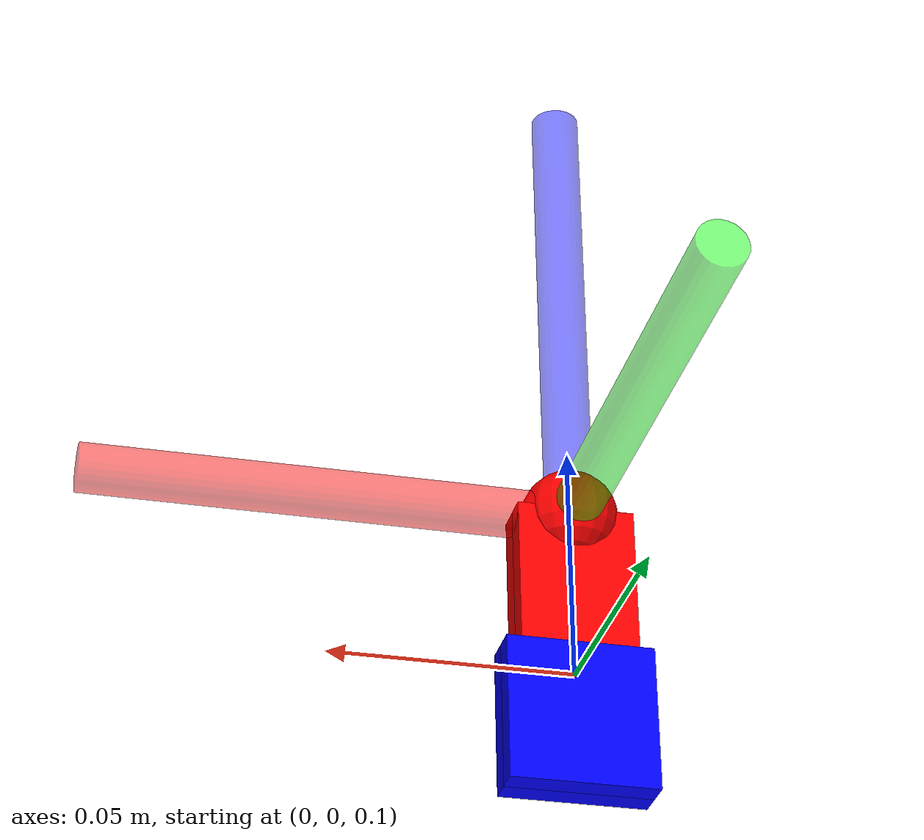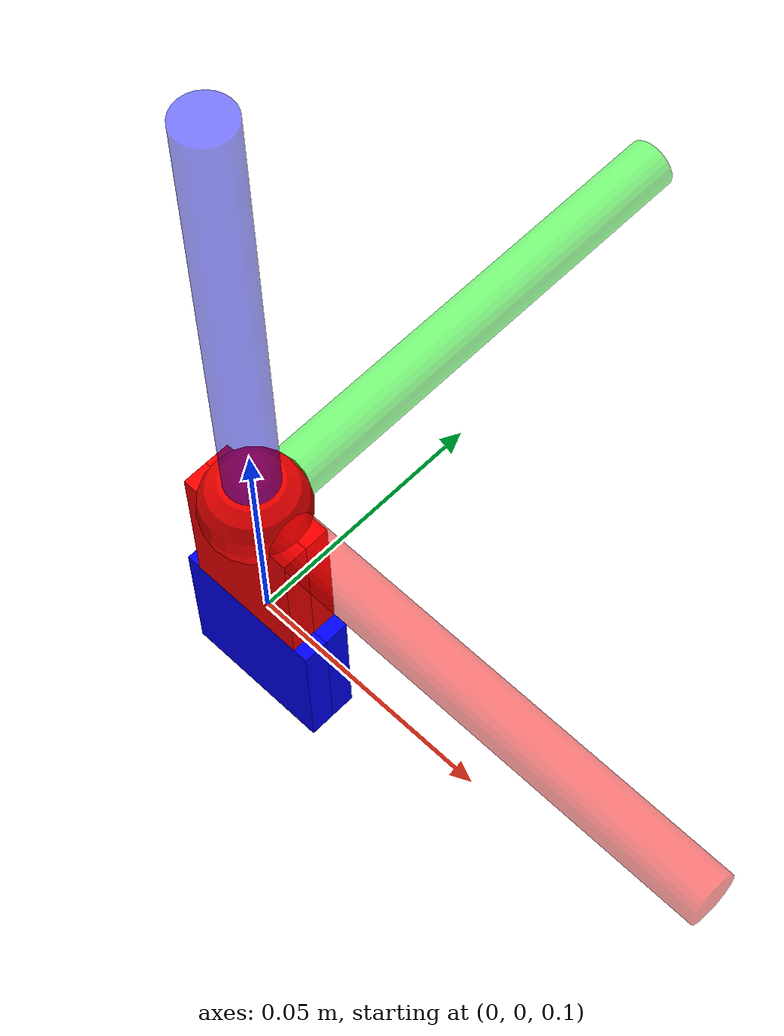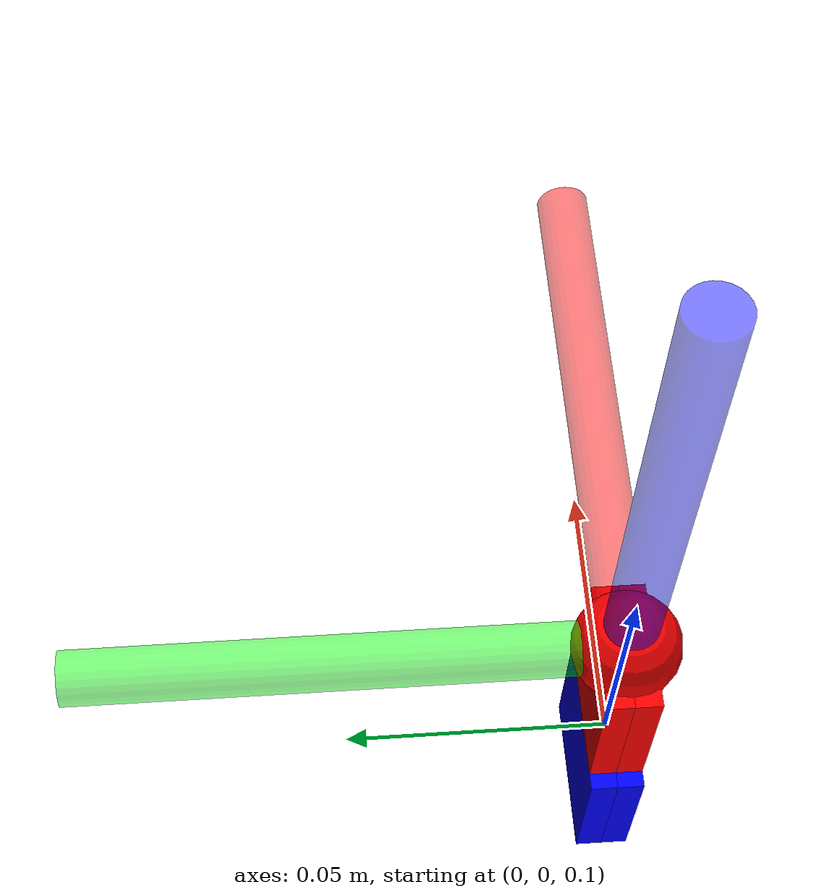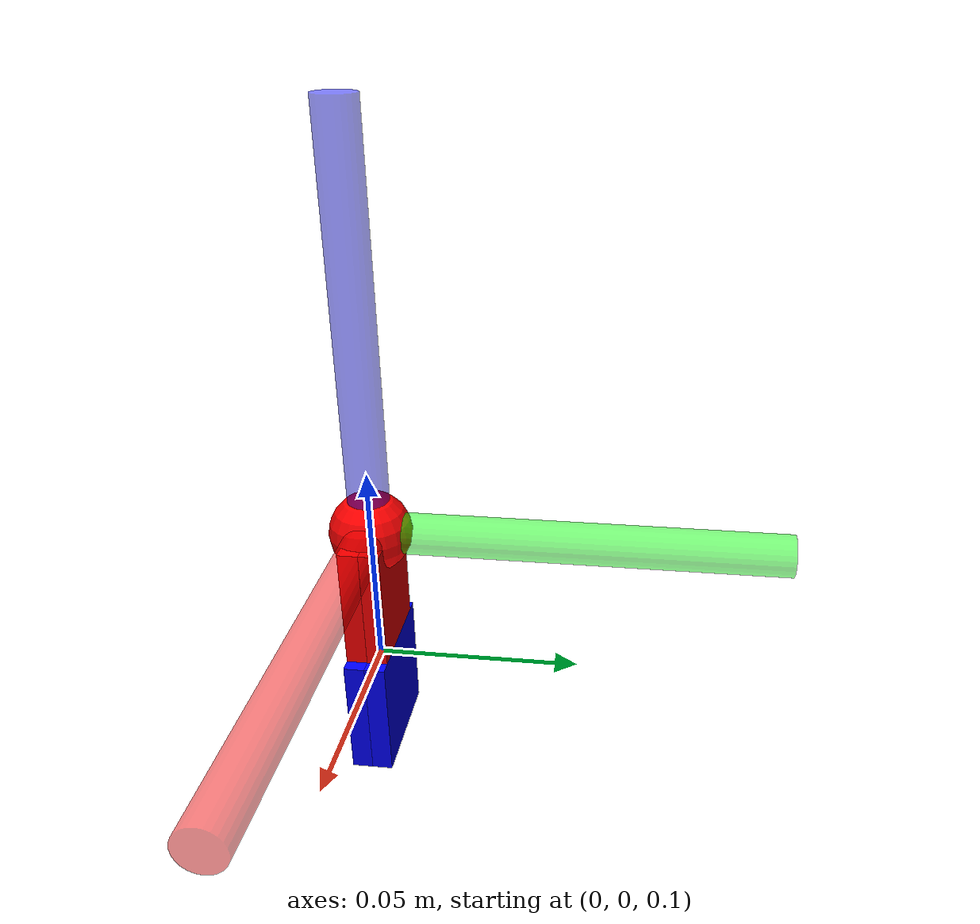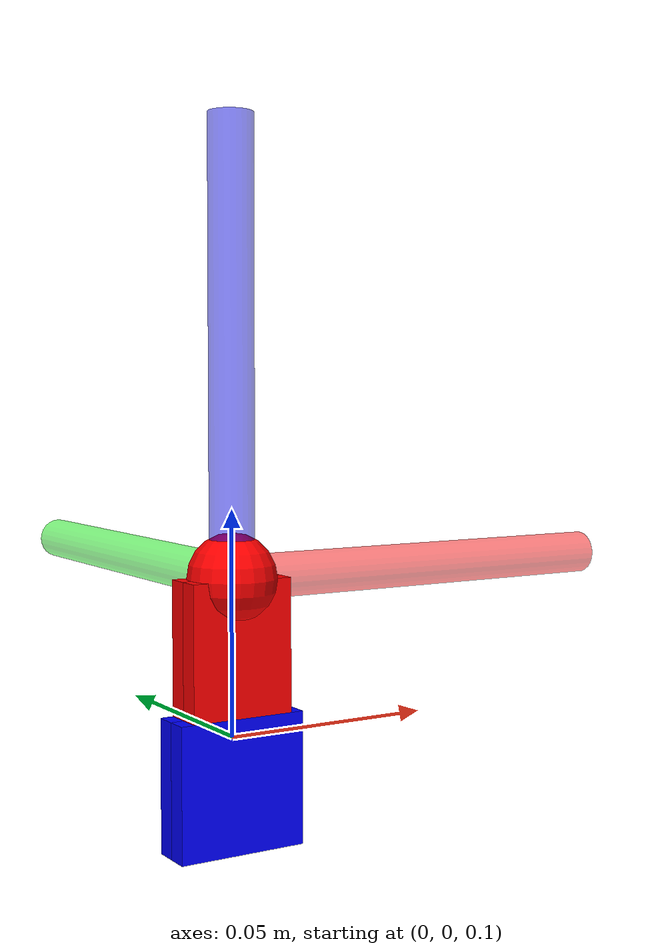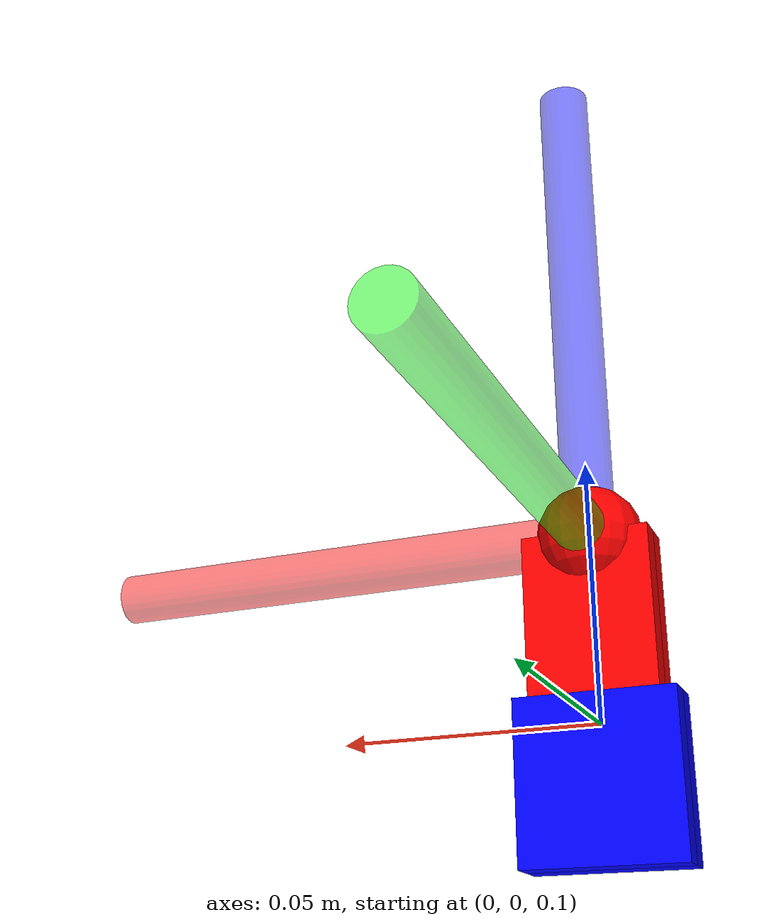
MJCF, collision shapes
<mujoco model="piper_gripper">
  <compiler angle="radian" meshdir="assets"/>

  <option integrator="implicitfast"/>

    <default>
      <default class="gripper">
        <joint frictionloss="0" type="slide"/>
        <position forcerange="-10 10"/>
      </default>
      <default class="visual">
        <geom group="2" type="mesh" contype="0" conaffinity="0" density="0"/>
      </default>
      <default class="collision">
        <geom group="3" type="capsule"/>
      </default>
    </default>

  <asset>
    <material class="gripper" name="gray_mat" rgba="0.59 0.59 0.59 1"/>
    <mesh class="gripper" file="assets/link7.stl"/>
    <mesh class="gripper" file="assets/link8.stl"/>
  </asset>

  <worldbody>
    <body name="gripper_base" childclass="gripper">
      <body name="eef" pos="0 0 0.13503" quat="1 0 0 0">
        <site name="eef_site" pos="0 0 0" size="0.01" rgba="1 0 0 1"/>
        <!-- 可选：添加坐标系可视化（X/Y/Z轴） -->
        <site name="eef_x" pos="0.05 0 0" size="0.005 0.05" type="cylinder" quat="0.707 0 0.707 0" rgba="1 0 0 0.5"/>
        <site name="eef_y" pos="0 0.05 0" size="0.005 0.05" type="cylinder" quat="0.707 0.707 0 0" rgba="0 1 0 0.5"/>
        <site name="eef_z" pos="0 0 0.05" size="0.005 0.05" type="cylinder" quat="1 0 0 0" rgba="0 0 1 0.5"/>
      </body>
      <body name="link7" pos="0 0 0.13503" quat="1.89468e-08 1.89469e-08 0.707108 0.707105" gravcomp="1">
        <inertial pos="-0.000277778 -0.0467673 -0.00921029" quat="0.46134 0.536174 -0.553273 0.439968"
            mass="0.0264823" diaginertia="0.001 0.001 0.001"/>
        <joint name="joint7" axis="0 0 -1" class="gripper" range="0 0.035"/>
        <geom mesh="link7" material="gray_mat" class="visual"/>
        <geom type="box" size=".012 .015 .0025" pos="0 -0.015 -0.0025" rgba="1 0 0 .2" class="collision"
        conaffinity="1" contype="1" friction="1 1 1" condim="4" solimp="0.99 0.99 0.01" solref="0.001 1"/>
        <geom type="box" size=".015 .015 .0025" pos="0 -0.045 -0.0025" rgba="0 0 1 .2" class="collision"
        conaffinity="1" contype="1" friction="1 1 1" condim="4" solimp="0.99 0.99 0.01" solref="0.001 1"/>
      </body>
      <body name="link8" pos="0 0 0.13503" quat="1.89468e-08 -1.89469e-08 -0.707108 0.707105" gravcomp="1">
        <inertial pos="0.000277817 0.0467674 -0.0092103" quat="0.553273 0.439968 -0.46134 0.536174"
            mass="0.0264822" diaginertia="0.001 0.001 0.001"/>
        <joint name="joint8" axis="0 0 1" class="gripper" range="-0.035 0"/>
        <geom mesh="link8" material="gray_mat" class="visual"/>
        <geom type="box" size=".012 .015 .0025" pos="0 0.015 -0.0025" rgba="1 0 0 .2" class="collision"
        conaffinity="1" contype="1" friction="1 1 1" condim="4" solimp="0.99 0.99 0.01" solref="0.001 1"/>
        <geom type="box" size=".015 .015 .0025" pos="0 0.045 -0.0025" rgba="0 0 1 .2" class="collision"
        conaffinity="1" contype="1" friction="1 1 1" condim="4" solimp="0.99 0.99 0.01" solref="0.001 1"/>
      </body>
    </body>
  </worldbody>

  <actuator>
    <position name="gripper" joint="joint7" class="gripper" kp="1000" kv="50" forcerange="-100 100" ctrlrange="0 0.035" ctrllimited="true"/>
  </actuator>

  <equality>
    <joint joint1="joint7" joint2="joint8" polycoef="0 -1 0 0 0"/>
  </equality>
</mujoco>
